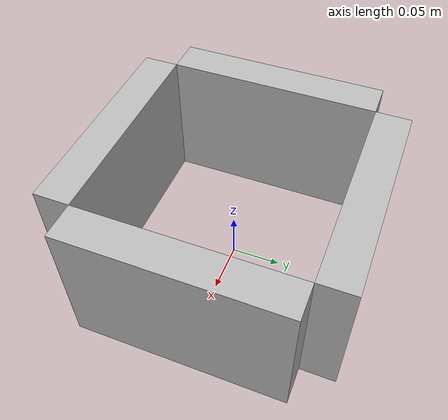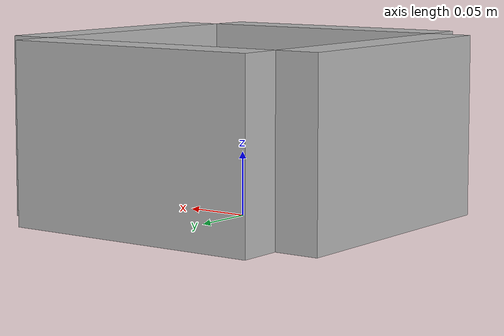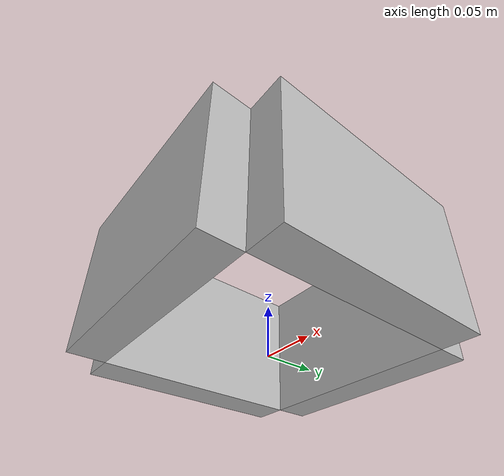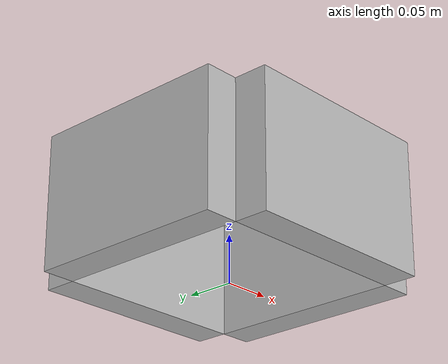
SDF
<?xml version="1.0" ?>
<sdf version="1.4">

 <model name="fixer">
         <static>true</static>
         <link name="fixer">
            <pose>-0.122807 0.000000 0.070175 0.000000 0.000000 0.000000</pose>
            <inertial>
               <mass>.1</mass>
               <inertia>
                  <ixx>0.05</ixx>
                  <ixy>0.0</ixy>
                  <iyy>0.05</iyy>
                  <ixz>0.0</ixz>
                  <iyz>0.0</iyz>
                  <izz>0.05</izz>
               </inertia>
            </inertial>
            <collision name="fixer">
               <surface>
                  <friction>
                     <ode>
                        <mu>100000.0</mu>
                        <mu2>100000.0</mu2>
                        <slip1>0.0</slip1>
                        <slip2>0.0</slip2>
                     </ode>
                  </friction>
               </surface>
               <geometry>
                  <box>
                     <size>0.035088 0.210526 0.140351</size>
                  </box>
               </geometry>
            </collision>
            <visual name="visual">
               <geometry>
                  <box>
                     <size>0.035088 0.210526 0.140351</size>
                  </box>
               </geometry>
            </visual>
         </link>
         <link name="fixefr">
            <pose>0.000000 0.122807 0.070175 0.000000 0.000000 0.000000</pose>
            <inertial>
               <mass>.1</mass>
               <inertia>
                  <ixx>0.05</ixx>
                  <ixy>0.0</ixy>
                  <iyy>0.05</iyy>
                  <ixz>0.0</ixz>
                  <iyz>0.0</iyz>
                  <izz>0.05</izz>
               </inertia>
            </inertial>
            <collision name="fixer">
               <surface>
                  <friction>
                     <ode>
                        <mu>100000.0</mu>
                        <mu2>100000.0</mu2>
                        <slip1>0.0</slip1>
                        <slip2>0.0</slip2>
                     </ode>
                  </friction>
               </surface>
               <geometry>
                  <box>
                     <size>0.210526 0.035088 0.140351</size>
                  </box>
               </geometry>
            </collision>
            <visual name="visual">
               <geometry>
                  <box>
                     <size>0.210526 0.035088 0.140351</size>
                  </box>
               </geometry>
            </visual>
         </link>
         <link name="fixger">
            <pose>0.122807 0.000000 0.070175 0.000000 0.000000 0.000000</pose>
            <inertial>
               <mass>.1</mass>
               <inertia>
                  <ixx>0.05</ixx>
                  <ixy>0.0</ixy>
                  <iyy>0.05</iyy>
                  <ixz>0.0</ixz>
                  <iyz>0.0</iyz>
                  <izz>0.05</izz>
               </inertia>
            </inertial>
            <collision name="fixer">
               <surface>
                  <friction>
                     <ode>
                        <mu>100000.0</mu>
                        <mu2>100000.0</mu2>
                        <slip1>0.0</slip1>
                        <slip2>0.0</slip2>
                     </ode>
                  </friction>
               </surface>
               <geometry>
                  <box>
                     <size>0.035088 0.210526 0.140351</size>
                  </box>
               </geometry>
            </collision>
            <visual name="visual">
               <geometry>
                  <box>
                     <size>0.035088 0.210526 0.140351</size>
                  </box>
               </geometry>
            </visual>
         </link>
         <link name="fihxer">
            <pose>0.000000 -0.122807 0.070175 0.000000 0.000000 0.000000</pose>
            <inertial>
               <mass>.1</mass>
               <inertia>
                  <ixx>0.05</ixx>
                  <ixy>0.0</ixy>
                  <iyy>0.05</iyy>
                  <ixz>0.0</ixz>
                  <iyz>0.0</iyz>
                  <izz>0.05</izz>
               </inertia>
            </inertial>
            <collision name="fixer">
               <surface>
                  <friction>
                     <ode>
                        <mu>100000.0</mu>
                        <mu2>100000.0</mu2>
                        <slip1>0.0</slip1>
                        <slip2>0.0</slip2>
                     </ode>
                  </friction>
               </surface>
               <geometry>
                  <box>
                     <size>0.210526 0.035088 0.140351</size>
                  </box>
               </geometry>
            </collision>
            <visual name="visual">
               <geometry>
                  <box>
                     <size>0.210526 0.035088 0.140351</size>
                  </box>
               </geometry>
            </visual>
         </link>
      </model>
</sdf>
